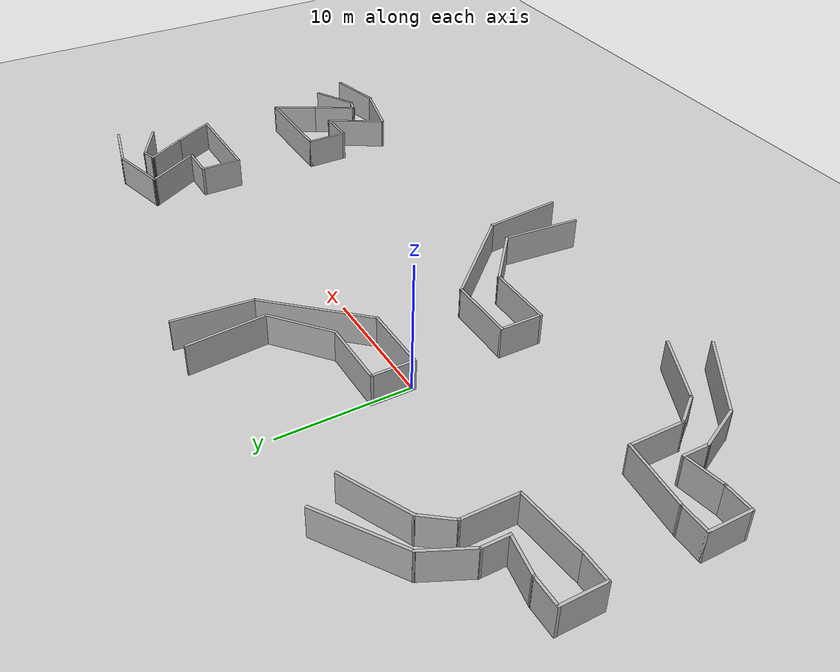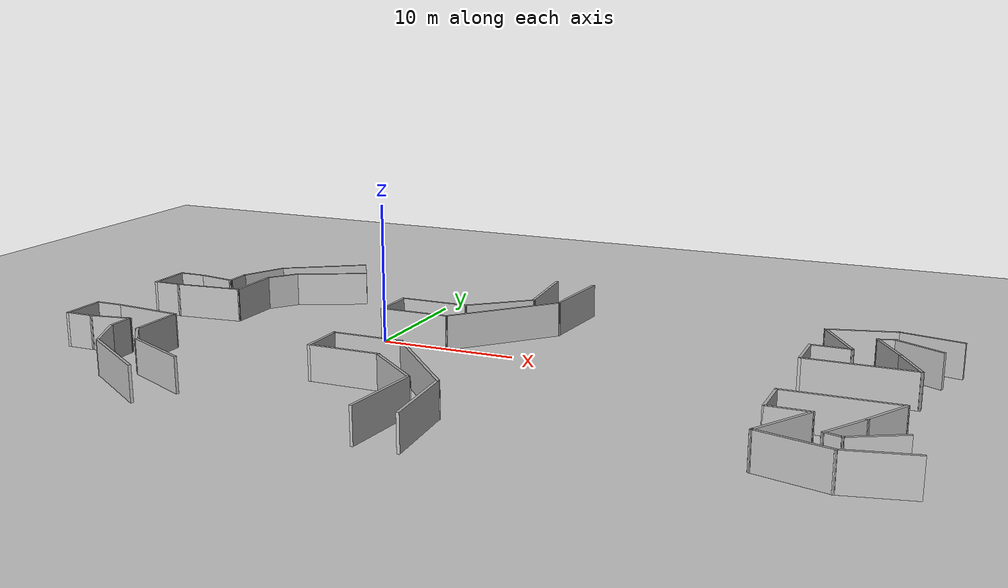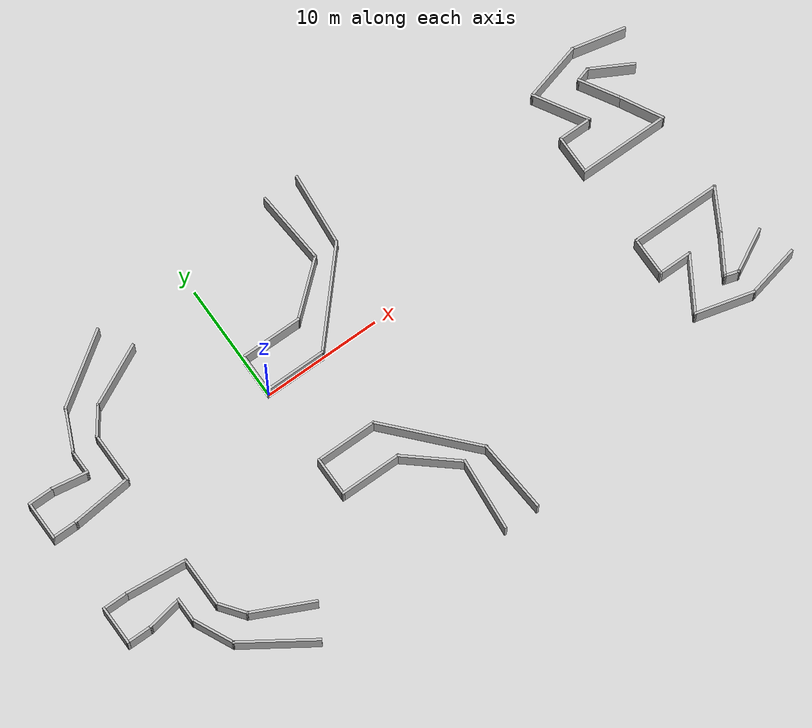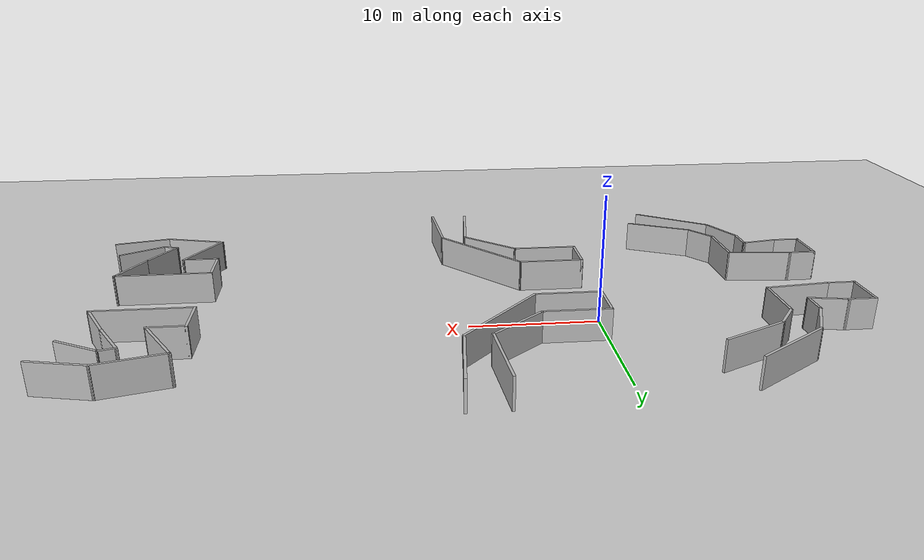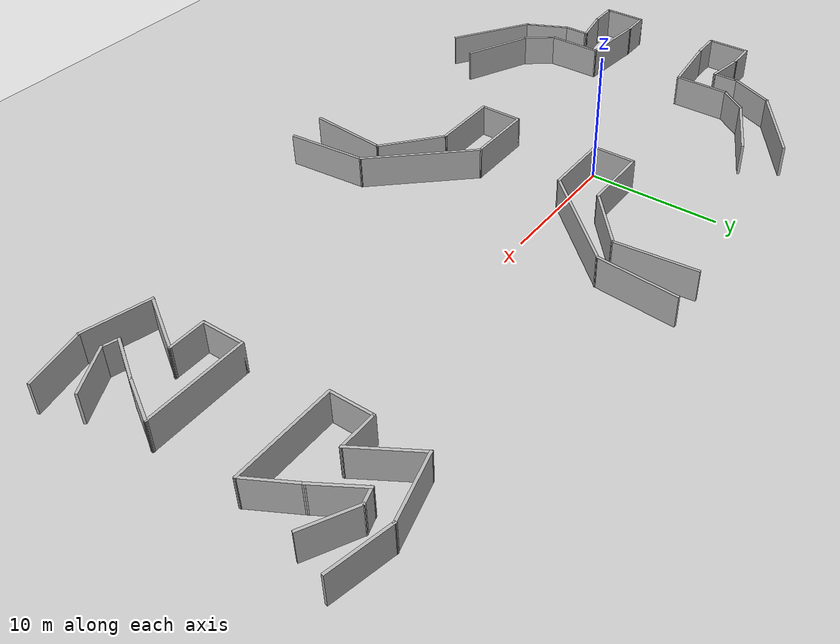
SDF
<?xml version='1.0'?>
<sdf version='1.4'>
  <world name="feedback_experiment2_worlds">
    <scene>
      <sky/>
    </scene>
    <include>
      <uri>model://ground_plane</uri>
    </include>
    <include>
      <uri>model://sun</uri>
    </include>
    <model name='World_0'>
            <link name='Wall_1'>
        <collision name='Wall_1_Collision'>
          <geometry>
            <box>
              <size>6.2208 0.2 2.5</size>
            </box>
          </geometry>
          <pose>0 0 1.25 0 -0 0</pose>
        </collision>
        <visual name='Wall_1_Visual'>
          <pose>0 0 1.25 0 -0 0</pose>
          <geometry>
            <box>
              <size>6.2208 0.2 2.5</size>
            </box>
          </geometry>
          <material>
            <script>
              <uri>file://media/materials/scripts/kitchen.material</uri>
              <name>Kitchen/Wall</name>
            </script>
          </material>
        </visual>
        <velocity_decay>
          <linear>0</linear>
          <angular>0</angular>
        </velocity_decay>
        <pose>8.7 9.45 0 0 0 -1.48765</pose>
      </link>
      <link name='Wall_2'>
        <collision name='Wall_2_Collision'>
          <geometry>
            <box>
              <size>5.37929 0.2 2.5</size>
            </box>
          </geometry>
          <pose>0 0 1.25 0 -0 0</pose>
        </collision>
        <visual name='Wall_2_Visual'>
          <pose>0 0 1.25 0 -0 0</pose>
          <geometry>
            <box>
              <size>5.37929 0.2 2.5</size>
            </box>
          </geometry>
          <material>
            <script>
              <uri>file://media/materials/scripts/kitchen.material</uri>
              <name>Kitchen/Wall</name>
            </script>
          </material>
        </visual>
        <velocity_decay>
          <linear>0</linear>
          <angular>0</angular>
        </velocity_decay>
        <pose>6.975 4.775 0 0 0 -2.4382</pose>
      </link>
      <link name='Wall_3'>
        <collision name='Wall_3_Collision'>
          <geometry>
            <box>
              <size>5.3 0.2 2.5</size>
            </box>
          </geometry>
          <pose>0 0 1.25 0 -0 0</pose>
        </collision>
        <visual name='Wall_3_Visual'>
          <pose>0 0 1.25 0 -0 0</pose>
          <geometry>
            <box>
              <size>5.3 0.2 2.5</size>
            </box>
          </geometry>
          <material>
            <script>
              <uri>file://media/materials/scripts/kitchen.material</uri>
              <name>Kitchen/Wall</name>
            </script>
          </material>
        </visual>
        <velocity_decay>
          <linear>0</linear>
          <angular>0</angular>
        </velocity_decay>
        <pose>2.45 3.1 0 0 -0 3.14159</pose>
      </link>
      <link name='Wall_4'>
        <collision name='Wall_4_Collision'>
          <geometry>
            <box>
              <size>3.4 0.2 2.5</size>
            </box>
          </geometry>
          <pose>0 0 1.25 0 -0 0</pose>
        </collision>
        <visual name='Wall_4_Visual'>
          <pose>0 0 1.25 0 -0 0</pose>
          <geometry>
            <box>
              <size>3.4 0.2 2.5</size>
            </box>
          </geometry>
          <material>
            <script>
              <uri>file://media/materials/scripts/kitchen.material</uri>
              <name>Kitchen/Wall</name>
            </script>
          </material>
        </visual>
        <velocity_decay>
          <linear>0</linear>
          <angular>0</angular>
        </velocity_decay>
        <pose>-0.1 1.5 0 0 0 -1.5708</pose>
      </link>
      <link name='Wall_5'>
        <collision name='Wall_5_Collision'>
          <geometry>
            <box>
              <size>5.3 0.2 2.5</size>
            </box>
          </geometry>
          <pose>0 0 1.25 0 -0 0</pose>
        </collision>
        <visual name='Wall_5_Visual'>
          <pose>0 0 1.25 0 -0 0</pose>
          <geometry>
            <box>
              <size>5.3 0.2 2.5</size>
            </box>
          </geometry>
          <material>
            <script>
              <uri>file://media/materials/scripts/kitchen.material</uri>
              <name>Kitchen/Wall</name>
            </script>
          </material>
        </visual>
        <velocity_decay>
          <linear>0</linear>
          <angular>0</angular>
        </velocity_decay>
        <pose>2.45 -0.1 0 0 -0 0</pose>
      </link>
      <link name='Wall_6'>
        <collision name='Wall_6_Collision'>
          <geometry>
            <box>
              <size>9.04901 0.2 2.5</size>
            </box>
          </geometry>
          <pose>0 0 1.25 0 -0 0</pose>
        </collision>
        <visual name='Wall_6_Visual'>
          <pose>0 0 1.25 0 -0 0</pose>
          <geometry>
            <box>
              <size>9.04901 0.2 2.5</size>
            </box>
          </geometry>
          <material>
            <script>
              <uri>file://media/materials/scripts/kitchen.material</uri>
              <name>Kitchen/Wall</name>
            </script>
          </material>
        </visual>
        <velocity_decay>
          <linear>0</linear>
          <angular>0</angular>
        </velocity_decay>
        <pose>7.975 3.175 0 0 -0 0.833361</pose>
      </link>
      <link name='Wall_7'>
        <collision name='Wall_7_Collision'>
          <geometry>
            <box>
              <size>6.2208 0.2 2.5</size>
            </box>
          </geometry>
          <pose>0 0 1.25 0 -0 0</pose>
        </collision>
        <visual name='Wall_7_Visual'>
          <pose>0 0 1.25 0 -0 0</pose>
          <geometry>
            <box>
              <size>6.2208 0.2 2.5</size>
            </box>
          </geometry>
          <material>
            <script>
              <uri>file://media/materials/scripts/kitchen.material</uri>
              <name>Kitchen/Wall</name>
            </script>
          </material>
        </visual>
        <velocity_decay>
          <linear>0</linear>
          <angular>0</angular>
        </velocity_decay>
        <pose>11.2 9.45 0 0 -0 1.48765</pose>
      </link>
      <static>1</static>
    </model>
    <model name='World_1'>
      <link name='Wall_1'>
        <collision name='Wall_1_Collision'>
          <geometry>
            <box>
              <size>6.2208 0.2 2.5</size>
            </box>
          </geometry>
          <pose>0 0 1.25 0 -0 0</pose>
        </collision>
        <visual name='Wall_1_Visual'>
          <pose>0 0 1.25 0 -0 0</pose>
          <geometry>
            <box>
              <size>6.2208 0.2 2.5</size>
            </box>
          </geometry>
          <material>
            <script>
              <uri>file://media/materials/scripts/kitchen.material</uri>
              <name>Kitchen/Wall</name>
            </script>
          </material>
        </visual>
        <velocity_decay>
          <linear>0</linear>
          <angular>0</angular>
        </velocity_decay>
        <pose>8.7 -16.45 0 0 -0 1.48765</pose>
      </link>
      <link name='Wall_2'>
        <collision name='Wall_2_Collision'>
          <geometry>
            <box>
              <size>5.37929 0.2 2.5</size>
            </box>
          </geometry>
          <pose>0 0 1.25 0 -0 0</pose>
        </collision>
        <visual name='Wall_2_Visual'>
          <pose>0 0 1.25 0 -0 0</pose>
          <geometry>
            <box>
              <size>5.37929 0.2 2.5</size>
            </box>
          </geometry>
          <material>
            <script>
              <uri>file://media/materials/scripts/kitchen.material</uri>
              <name>Kitchen/Wall</name>
            </script>
          </material>
        </visual>
        <velocity_decay>
          <linear>0</linear>
          <angular>0</angular>
        </velocity_decay>
        <pose>6.975 -11.775 0 0 -0 2.4382</pose>
      </link>
      <link name='Wall_3'>
        <collision name='Wall_3_Collision'>
          <geometry>
            <box>
              <size>5.3 0.2 2.5</size>
            </box>
          </geometry>
          <pose>0 0 1.25 0 -0 0</pose>
        </collision>
        <visual name='Wall_3_Visual'>
          <pose>0 0 1.25 0 -0 0</pose>
          <geometry>
            <box>
              <size>5.3 0.2 2.5</size>
            </box>
          </geometry>
          <material>
            <script>
              <uri>file://media/materials/scripts/kitchen.material</uri>
              <name>Kitchen/Wall</name>
            </script>
          </material>
        </visual>
        <velocity_decay>
          <linear>0</linear>
          <angular>0</angular>
        </velocity_decay>
        <pose>2.45 -10.1 0 0 -0 3.14159</pose>
      </link>
      <link name='Wall_4'>
        <collision name='Wall_4_Collision'>
          <geometry>
            <box>
              <size>3.4 0.2 2.5</size>
            </box>
          </geometry>
          <pose>0 0 1.25 0 -0 0</pose>
        </collision>
        <visual name='Wall_4_Visual'>
          <pose>0 0 1.25 0 -0 0</pose>
          <geometry>
            <box>
              <size>3.4 0.2 2.5</size>
            </box>
          </geometry>
          <material>
            <script>
              <uri>file://media/materials/scripts/kitchen.material</uri>
              <name>Kitchen/Wall</name>
            </script>
          </material>
        </visual>
        <velocity_decay>
          <linear>0</linear>
          <angular>0</angular>
        </velocity_decay>
        <pose>-0.1 -8.5 0 0 -0 1.5708</pose>
      </link>
      <link name='Wall_5'>
        <collision name='Wall_5_Collision'>
          <geometry>
            <box>
              <size>5.3 0.2 2.5</size>
            </box>
          </geometry>
          <pose>0 0 1.25 0 -0 0</pose>
        </collision>
        <visual name='Wall_5_Visual'>
          <pose>0 0 1.25 0 -0 0</pose>
          <geometry>
            <box>
              <size>5.3 0.2 2.5</size>
            </box>
          </geometry>
          <material>
            <script>
              <uri>file://media/materials/scripts/kitchen.material</uri>
              <name>Kitchen/Wall</name>
            </script>
          </material>
        </visual>
        <velocity_decay>
          <linear>0</linear>
          <angular>0</angular>
        </velocity_decay>
        <pose>2.45 -6.9 0 0 -0 0</pose>
      </link>
      <link name='Wall_6'>
        <collision name='Wall_6_Collision'>
          <geometry>
            <box>
              <size>9.04901 0.2 2.5</size>
            </box>
          </geometry>
          <pose>0 0 1.25 0 -0 0</pose>
        </collision>
        <visual name='Wall_6_Visual'>
          <pose>0 0 1.25 0 -0 0</pose>
          <geometry>
            <box>
              <size>9.04901 0.2 2.5</size>
            </box>
          </geometry>
          <material>
            <script>
              <uri>file://media/materials/scripts/kitchen.material</uri>
              <name>Kitchen/Wall</name>
            </script>
          </material>
        </visual>
        <velocity_decay>
          <linear>0</linear>
          <angular>0</angular>
        </velocity_decay>
        <pose>7.975 -10.175 0 0 0 -0.833361</pose>
      </link>
      <link name='Wall_7'>
        <collision name='Wall_7_Collision'>
          <geometry>
            <box>
              <size>6.2208 0.2 2.5</size>
            </box>
          </geometry>
          <pose>0 0 1.25 0 -0 0</pose>
        </collision>
        <visual name='Wall_7_Visual'>
          <pose>0 0 1.25 0 -0 0</pose>
          <geometry>
            <box>
              <size>6.2208 0.2 2.5</size>
            </box>
          </geometry>
          <material>
            <script>
              <uri>file://media/materials/scripts/kitchen.material</uri>
              <name>Kitchen/Wall</name>
            </script>
          </material>
        </visual>
        <velocity_decay>
          <linear>0</linear>
          <angular>0</angular>
        </velocity_decay>
        <pose>11.2 -16.45 0 0 0 -1.48765</pose>
      </link>
      <static>1</static>
    </model>
    <model name='World_2'>
      <link name='Wall_1'>
        <collision name='Wall_1_Collision'>
          <geometry>
            <box>
              <size>6.83838 0.2 2.5</size>
            </box>
          </geometry>
          <pose>0 0 1.25 0 -0 0</pose>
        </collision>
        <visual name='Wall_1_Visual'>
          <pose>0 0 1.25 0 -0 0</pose>
          <geometry>
            <box>
              <size>6.83838 0.2 2.5</size>
            </box>
          </geometry>
          <material>
            <script>
              <uri>file://media/materials/scripts/kitchen.material</uri>
              <name>Kitchen/Wall</name>
            </script>
          </material>
        </visual>
        <velocity_decay>
          <linear>0</linear>
          <angular>0</angular>
        </velocity_decay>
        <pose>-10.8185 9.56 0 0 0 -2.55509</pose>
      </link>
      <link name='Wall_2'>
        <collision name='Wall_2_Collision'>
          <geometry>
            <box>
              <size>3.76216 0.2 2.5</size>
            </box>
          </geometry>
          <pose>0 0 1.25 0 -0 0</pose>
        </collision>
        <visual name='Wall_2_Visual'>
          <pose>0 0 1.25 0 -0 0</pose>
          <geometry>
            <box>
              <size>3.76216 0.2 2.5</size>
            </box>
          </geometry>
          <material>
            <script>
              <uri>file://media/materials/scripts/kitchen.material</uri>
              <name>Kitchen/Wall</name>
            </script>
          </material>
        </visual>
        <velocity_decay>
          <linear>0</linear>
          <angular>0</angular>
        </velocity_decay>
        <pose>-14.3415 6.1115 0 0 0 -2.01071</pose>
      </link>
      <link name='Wall_3'>
        <collision name='Wall_3_Collision'>
          <geometry>
            <box>
              <size>2.1 0.2 2.5</size>
            </box>
          </geometry>
          <pose>0 0 1.25 0 -0 0</pose>
        </collision>
        <visual name='Wall_3_Visual'>
          <pose>0 0 1.25 0 -0 0</pose>
          <geometry>
            <box>
              <size>2.1 0.2 2.5</size>
            </box>
          </geometry>
          <material>
            <script>
              <uri>file://media/materials/scripts/kitchen.material</uri>
              <name>Kitchen/Wall</name>
            </script>
          </material>
        </visual>
        <velocity_decay>
          <linear>0</linear>
          <angular>0</angular>
        </velocity_decay>
        <pose>-15.1 3.55 0 0 0 -1.5708</pose>
      </link>
      <link name='Wall_4'>
        <collision name='Wall_4_Collision'>
          <geometry>
            <box>
              <size>3.14279 0.2 2.5</size>
            </box>
          </geometry>
          <pose>0 0 1.25 0 -0 0</pose>
        </collision>
        <visual name='Wall_4_Visual'>
          <pose>0 0 1.25 0 -0 0</pose>
          <geometry>
            <box>
              <size>3.14279 0.2 2.5</size>
            </box>
          </geometry>
          <material>
            <script>
              <uri>file://media/materials/scripts/kitchen.material</uri>
              <name>Kitchen/Wall</name>
            </script>
          </material>
        </visual>
        <velocity_decay>
          <linear>0</linear>
          <angular>0</angular>
        </velocity_decay>
        <pose>-16.55 2.85 0 0 -0 2.97086</pose>
      </link>
      <link name='Wall_5'>
        <collision name='Wall_5_Collision'>
          <geometry>
            <box>
              <size>2.3 0.2 2.5</size>
            </box>
          </geometry>
          <pose>0 0 1.25 0 -0 0</pose>
        </collision>
        <visual name='Wall_5_Visual'>
          <pose>0 0 1.25 0 -0 0</pose>
          <geometry>
            <box>
              <size>2.3 0.2 2.5</size>
            </box>
          </geometry>
          <material>
            <script>
              <uri>file://media/materials/scripts/kitchen.material</uri>
              <name>Kitchen/Wall</name>
            </script>
          </material>
        </visual>
        <velocity_decay>
          <linear>0</linear>
          <angular>0</angular>
        </velocity_decay>
        <pose>-19.05 3.1 0 0 -0 3.14159</pose>
      </link>
      <link name='Wall_6'>
        <collision name='Wall_6_Collision'>
          <geometry>
            <box>
              <size>3.4 0.2 2.5</size>
            </box>
          </geometry>
          <pose>0 0 1.25 0 -0 0</pose>
        </collision>
        <visual name='Wall_6_Visual'>
          <pose>0 0 1.25 0 -0 0</pose>
          <geometry>
            <box>
              <size>3.4 0.2 2.5</size>
            </box>
          </geometry>
          <material>
            <script>
              <uri>file://media/materials/scripts/kitchen.material</uri>
              <name>Kitchen/Wall</name>
            </script>
          </material>
        </visual>
        <velocity_decay>
          <linear>0</linear>
          <angular>0</angular>
        </velocity_decay>
        <pose>-20.1 1.5 0 0 0 -1.5708</pose>
      </link>
      <link name='Wall_7'>
        <collision name='Wall_7_Collision'>
          <geometry>
            <box>
              <size>2.3 0.2 2.5</size>
            </box>
          </geometry>
          <pose>0 0 1.25 0 -0 0</pose>
        </collision>
        <visual name='Wall_7_Visual'>
          <pose>0 0 1.25 0 -0 0</pose>
          <geometry>
            <box>
              <size>2.3 0.2 2.5</size>
            </box>
          </geometry>
          <material>
            <script>
              <uri>file://media/materials/scripts/kitchen.material</uri>
              <name>Kitchen/Wall</name>
            </script>
          </material>
        </visual>
        <velocity_decay>
          <linear>0</linear>
          <angular>0</angular>
        </velocity_decay>
        <pose>-19.05 -0.1 0 0 -0 0</pose>
      </link>
      <link name='Wall_8'>
        <collision name='Wall_8_Collision'>
          <geometry>
            <box>
              <size>5.32445 0.2 2.5</size>
            </box>
          </geometry>
          <pose>0 0 1.25 0 -0 0</pose>
        </collision>
        <visual name='Wall_8_Visual'>
          <pose>0 0 1.25 0 -0 0</pose>
          <geometry>
            <box>
              <size>5.32445 0.2 2.5</size>
            </box>
          </geometry>
          <material>
            <script>
              <uri>file://media/materials/scripts/kitchen.material</uri>
              <name>Kitchen/Wall</name>
            </script>
          </material>
        </visual>
        <velocity_decay>
          <linear>0</linear>
          <angular>0</angular>
        </velocity_decay>
        <pose>-15.45 0.15 0 0 -0 0.097727</pose>
      </link>
      <link name='Wall_9'>
        <collision name='Wall_9_Collision'>
          <geometry>
            <box>
              <size>4.3 0.2 2.5</size>
            </box>
          </geometry>
          <pose>0 0 1.25 0 -0 0</pose>
        </collision>
        <visual name='Wall_9_Visual'>
          <pose>0 0 1.25 0 -0 0</pose>
          <geometry>
            <box>
              <size>4.3 0.2 2.5</size>
            </box>
          </geometry>
          <material>
            <script>
              <uri>file://media/materials/scripts/kitchen.material</uri>
              <name>Kitchen/Wall</name>
            </script>
          </material>
        </visual>
        <velocity_decay>
          <linear>0</linear>
          <angular>0</angular>
        </velocity_decay>
        <pose>-12.9 2.45 0 0 -0 1.5708</pose>
      </link>
      <link name='Wall_10'>
        <collision name='Wall_10_Collision'>
          <geometry>
            <box>
              <size>2.6682 0.2 2.5</size>
            </box>
          </geometry>
          <pose>0 0 1.25 0 -0 0</pose>
        </collision>
        <visual name='Wall_10_Visual'>
          <pose>0 0 1.25 0 -0 0</pose>
          <geometry>
            <box>
              <size>2.6682 0.2 2.5</size>
            </box>
          </geometry>
          <material>
            <script>
              <uri>file://media/materials/scripts/kitchen.material</uri>
              <name>Kitchen/Wall</name>
            </script>
          </material>
        </visual>
        <velocity_decay>
          <linear>0</linear>
          <angular>0</angular>
        </velocity_decay>
        <pose>-12.1585 5.4865 0 0 -0 0.926242</pose>
      </link>
      <link name='Wall_11'>
        <collision name='Wall_11_Collision'>
          <geometry>
            <box>
              <size>5.59064 0.2 2.5</size>
            </box>
          </geometry>
          <pose>0 0 1.25 0 -0 0</pose>
        </collision>
        <visual name='Wall_11_Visual'>
          <pose>0 0 1.25 0 -0 0</pose>
          <geometry>
            <box>
              <size>5.59064 0.2 2.5</size>
            </box>
          </geometry>
          <material>
            <script>
              <uri>file://media/materials/scripts/kitchen.material</uri>
              <name>Kitchen/Wall</name>
            </script>
          </material>
        </visual>
        <velocity_decay>
          <linear>0</linear>
          <angular>0</angular>
        </velocity_decay>
        <pose>-8.9855 7.636 0 0 -0 0.446142</pose>
      </link>
      <static>1</static>
    </model>
    <model name='World_3'>
      <link name='Wall_1'>
        <collision name='Wall_1_Collision'>
          <geometry>
            <box>
              <size>6.83838 0.2 2.5</size>
            </box>
          </geometry>
          <pose>0 0 1.25 0 -0 0</pose>
        </collision>
        <visual name='Wall_1_Visual'>
          <pose>0 0 1.25 0 -0 0</pose>
          <geometry>
            <box>
              <size>6.83838 0.2 2.5</size>
            </box>
          </geometry>
          <material>
            <script>
              <uri>file://media/materials/scripts/kitchen.material</uri>
              <name>Kitchen/Wall</name>
            </script>
          </material>
        </visual>
        <velocity_decay>
          <linear>0</linear>
          <angular>0</angular>
        </velocity_decay>
        <pose>-10.8185 -16.56 0 0 -0 2.55509</pose>
      </link>
      <link name='Wall_2'>
        <collision name='Wall_2_Collision'>
          <geometry>
            <box>
              <size>3.76216 0.2 2.5</size>
            </box>
          </geometry>
          <pose>0 0 1.25 0 -0 0</pose>
        </collision>
        <visual name='Wall_2_Visual'>
          <pose>0 0 1.25 0 -0 0</pose>
          <geometry>
            <box>
              <size>3.76216 0.2 2.5</size>
            </box>
          </geometry>
          <material>
            <script>
              <uri>file://media/materials/scripts/kitchen.material</uri>
              <name>Kitchen/Wall</name>
            </script>
          </material>
        </visual>
        <velocity_decay>
          <linear>0</linear>
          <angular>0</angular>
        </velocity_decay>
        <pose>-14.3415 -13.1115 0 0 -0 2.01071</pose>
      </link>
      <link name='Wall_3'>
        <collision name='Wall_3_Collision'>
          <geometry>
            <box>
              <size>2.1 0.2 2.5</size>
            </box>
          </geometry>
          <pose>0 0 1.25 0 -0 0</pose>
        </collision>
        <visual name='Wall_3_Visual'>
          <pose>0 0 1.25 0 -0 0</pose>
          <geometry>
            <box>
              <size>2.1 0.2 2.5</size>
            </box>
          </geometry>
          <material>
            <script>
              <uri>file://media/materials/scripts/kitchen.material</uri>
              <name>Kitchen/Wall</name>
            </script>
          </material>
        </visual>
        <velocity_decay>
          <linear>0</linear>
          <angular>0</angular>
        </velocity_decay>
        <pose>-15.1 -10.55 0 0 -0 1.5708</pose>
      </link>
      <link name='Wall_4'>
        <collision name='Wall_4_Collision'>
          <geometry>
            <box>
              <size>3.14279 0.2 2.5</size>
            </box>
          </geometry>
          <pose>0 0 1.25 0 -0 0</pose>
        </collision>
        <visual name='Wall_4_Visual'>
          <pose>0 0 1.25 0 -0 0</pose>
          <geometry>
            <box>
              <size>3.14279 0.2 2.5</size>
            </box>
          </geometry>
          <material>
            <script>
              <uri>file://media/materials/scripts/kitchen.material</uri>
              <name>Kitchen/Wall</name>
            </script>
          </material>
        </visual>
        <velocity_decay>
          <linear>0</linear>
          <angular>0</angular>
        </velocity_decay>
        <pose>-16.55 -9.85 0 0 0 -2.97086</pose>
      </link>
      <link name='Wall_5'>
        <collision name='Wall_5_Collision'>
          <geometry>
            <box>
              <size>2.3 0.2 2.5</size>
            </box>
          </geometry>
          <pose>0 0 1.25 0 -0 0</pose>
        </collision>
        <visual name='Wall_5_Visual'>
          <pose>0 0 1.25 0 -0 0</pose>
          <geometry>
            <box>
              <size>2.3 0.2 2.5</size>
            </box>
          </geometry>
          <material>
            <script>
              <uri>file://media/materials/scripts/kitchen.material</uri>
              <name>Kitchen/Wall</name>
            </script>
          </material>
        </visual>
        <velocity_decay>
          <linear>0</linear>
          <angular>0</angular>
        </velocity_decay>
        <pose>-19.05 -10.1 0 0 -0 3.14159</pose>
      </link>
      <link name='Wall_6'>
        <collision name='Wall_6_Collision'>
          <geometry>
            <box>
              <size>3.4 0.2 2.5</size>
            </box>
          </geometry>
          <pose>0 0 1.25 0 -0 0</pose>
        </collision>
        <visual name='Wall_6_Visual'>
          <pose>0 0 1.25 0 -0 0</pose>
          <geometry>
            <box>
              <size>3.4 0.2 2.5</size>
            </box>
          </geometry>
          <material>
            <script>
              <uri>file://media/materials/scripts/kitchen.material</uri>
              <name>Kitchen/Wall</name>
            </script>
          </material>
        </visual>
        <velocity_decay>
          <linear>0</linear>
          <angular>0</angular>
        </velocity_decay>
        <pose>-20.1 -8.5 0 0 -0 1.5708</pose>
      </link>
      <link name='Wall_7'>
        <collision name='Wall_7_Collision'>
          <geometry>
            <box>
              <size>2.3 0.2 2.5</size>
            </box>
          </geometry>
          <pose>0 0 1.25 0 -0 0</pose>
        </collision>
        <visual name='Wall_7_Visual'>
          <pose>0 0 1.25 0 -0 0</pose>
          <geometry>
            <box>
              <size>2.3 0.2 2.5</size>
            </box>
          </geometry>
          <material>
            <script>
              <uri>file://media/materials/scripts/kitchen.material</uri>
              <name>Kitchen/Wall</name>
            </script>
          </material>
        </visual>
        <velocity_decay>
          <linear>0</linear>
          <angular>0</angular>
        </velocity_decay>
        <pose>-19.05 -6.9 0 0 -0 0</pose>
      </link>
      <link name='Wall_8'>
        <collision name='Wall_8_Collision'>
          <geometry>
            <box>
              <size>5.32445 0.2 2.5</size>
            </box>
          </geometry>
          <pose>0 0 1.25 0 -0 0</pose>
        </collision>
        <visual name='Wall_8_Visual'>
          <pose>0 0 1.25 0 -0 0</pose>
          <geometry>
            <box>
              <size>5.32445 0.2 2.5</size>
            </box>
          </geometry>
          <material>
            <script>
              <uri>file://media/materials/scripts/kitchen.material</uri>
              <name>Kitchen/Wall</name>
            </script>
          </material>
        </visual>
        <velocity_decay>
          <linear>0</linear>
          <angular>0</angular>
        </velocity_decay>
        <pose>-15.45 -7.15 0 0 0 -0.097727</pose>
      </link>
      <link name='Wall_9'>
        <collision name='Wall_9_Collision'>
          <geometry>
            <box>
              <size>4.3 0.2 2.5</size>
            </box>
          </geometry>
          <pose>0 0 1.25 0 -0 0</pose>
        </collision>
        <visual name='Wall_9_Visual'>
          <pose>0 0 1.25 0 -0 0</pose>
          <geometry>
            <box>
              <size>4.3 0.2 2.5</size>
            </box>
          </geometry>
          <material>
            <script>
              <uri>file://media/materials/scripts/kitchen.material</uri>
              <name>Kitchen/Wall</name>
            </script>
          </material>
        </visual>
        <velocity_decay>
          <linear>0</linear>
          <angular>0</angular>
        </velocity_decay>
        <pose>-12.9 -9.45 0 0 0 -1.5708</pose>
      </link>
      <link name='Wall_10'>
        <collision name='Wall_10_Collision'>
          <geometry>
            <box>
              <size>2.6682 0.2 2.5</size>
            </box>
          </geometry>
          <pose>0 0 1.25 0 -0 0</pose>
        </collision>
        <visual name='Wall_10_Visual'>
          <pose>0 0 1.25 0 -0 0</pose>
          <geometry>
            <box>
              <size>2.6682 0.2 2.5</size>
            </box>
          </geometry>
          <material>
            <script>
              <uri>file://media/materials/scripts/kitchen.material</uri>
              <name>Kitchen/Wall</name>
            </script>
          </material>
        </visual>
        <velocity_decay>
          <linear>0</linear>
          <angular>0</angular>
        </velocity_decay>
        <pose>-12.1585 -12.4865 0 0 0 -0.926242</pose>
      </link>
      <link name='Wall_11'>
        <collision name='Wall_11_Collision'>
          <geometry>
            <box>
              <size>5.59064 0.2 2.5</size>
            </box>
          </geometry>
          <pose>0 0 1.25 0 -0 0</pose>
        </collision>
        <visual name='Wall_11_Visual'>
          <pose>0 0 1.25 0 -0 0</pose>
          <geometry>
            <box>
              <size>5.59064 0.2 2.5</size>
            </box>
          </geometry>
          <material>
            <script>
              <uri>file://media/materials/scripts/kitchen.material</uri>
              <name>Kitchen/Wall</name>
            </script>
          </material>
        </visual>
        <velocity_decay>
          <linear>0</linear>
          <angular>0</angular>
        </velocity_decay>
        <pose>-8.9855 -14.636 0 0 0 -0.446142</pose>
      </link>
      <static>1</static>
    </model>
    <model name='World_4'>
      <link name='Wall_1'>
        <collision name='Wall_1_Collision'>
          <geometry>
            <box>
              <size>4.57832 0.2 2.5</size>
            </box>
          </geometry>
          <pose>0 0 1.25 0 -0 0</pose>
        </collision>
        <visual name='Wall_1_Visual'>
          <pose>0 0 1.25 0 -0 0</pose>
          <geometry>
            <box>
              <size>4.57832 0.2 2.5</size>
            </box>
          </geometry>
          <material>
            <script>
              <uri>file://media/materials/scripts/kitchen.material</uri>
              <name>Kitchen/Wall</name>
            </script>
          </material>
        </visual>
        <velocity_decay>
          <linear>0</linear>
          <angular>0</angular>
        </velocity_decay>
        <pose>37.034 7.9935 0 0 -0 2.92077</pose>
      </link>
      <link name='Wall_2'>
        <collision name='Wall_2_Collision'>
          <geometry>
            <box>
              <size>5.07229 0.2 2.5</size>
            </box>
          </geometry>
          <pose>0 0 1.25 0 -0 0</pose>
        </collision>
        <visual name='Wall_2_Visual'>
          <pose>0 0 1.25 0 -0 0</pose>
          <geometry>
            <box>
              <size>5.07229 0.2 2.5</size>
            </box>
          </geometry>
          <material>
            <script>
              <uri>file://media/materials/scripts/kitchen.material</uri>
              <name>Kitchen/Wall</name>
            </script>
          </material>
        </visual>
        <velocity_decay>
          <linear>0</linear>
          <angular>0</angular>
        </velocity_decay>
        <pose>32.5405 7.859 0 0 0 -2.88681</pose>
      </link>
      <link name='Wall_3'>
        <collision name='Wall_3_Collision'>
          <geometry>
            <box>
              <size>5.01544 0.2 2.5</size>
            </box>
          </geometry>
          <pose>0 0 1.25 0 -0 0</pose>
        </collision>
        <visual name='Wall_3_Visual'>
          <pose>0 0 1.25 0 -0 0</pose>
          <geometry>
            <box>
              <size>5.01544 0.2 2.5</size>
            </box>
          </geometry>
          <material>
            <script>
              <uri>file://media/materials/scripts/kitchen.material</uri>
              <name>Kitchen/Wall</name>
            </script>
          </material>
        </visual>
        <velocity_decay>
          <linear>0</linear>
          <angular>0</angular>
        </velocity_decay>
        <pose>31.4085 5.1725 0 0 0 -1.03679</pose>
      </link>
      <link name='Wall_4'>
        <collision name='Wall_4_Collision'>
          <geometry>
            <box>
              <size>2.934 0.2 2.5</size>
            </box>
          </geometry>
          <pose>0 0 1.25 0 -0 0</pose>
        </collision>
        <visual name='Wall_4_Visual'>
          <pose>0 0 1.25 0 -0 0</pose>
          <geometry>
            <box>
              <size>2.934 0.2 2.5</size>
            </box>
          </geometry>
          <material>
            <script>
              <uri>file://media/materials/scripts/kitchen.material</uri>
              <name>Kitchen/Wall</name>
            </script>
          </material>
        </visual>
        <velocity_decay>
          <linear>0</linear>
          <angular>0</angular>
        </velocity_decay>
        <pose>31.267 3.1 0 0 -0 3.14159</pose>
      </link>
      <link name='Wall_5'>
        <collision name='Wall_5_Collision'>
          <geometry>
            <box>
              <size>3.4 0.2 2.5</size>
            </box>
          </geometry>
          <pose>0 0 1.25 0 -0 0</pose>
        </collision>
        <visual name='Wall_5_Visual'>
          <pose>0 0 1.25 0 -0 0</pose>
          <geometry>
            <box>
              <size>3.4 0.2 2.5</size>
            </box>
          </geometry>
          <material>
            <script>
              <uri>file://media/materials/scripts/kitchen.material</uri>
              <name>Kitchen/Wall</name>
            </script>
          </material>
        </visual>
        <velocity_decay>
          <linear>0</linear>
          <angular>0</angular>
        </velocity_decay>
        <pose>29.9 1.5 0 0 0 -1.5708</pose>
      </link>
      <link name='Wall_6'>
        <collision name='Wall_6_Collision'>
          <geometry>
            <box>
              <size>7.666 0.2 2.5</size>
            </box>
          </geometry>
          <pose>0 0 1.25 0 -0 0</pose>
        </collision>
        <visual name='Wall_6_Visual'>
          <pose>0 0 1.25 0 -0 0</pose>
          <geometry>
            <box>
              <size>7.666 0.2 2.5</size>
            </box>
          </geometry>
          <material>
            <script>
              <uri>file://media/materials/scripts/kitchen.material</uri>
              <name>Kitchen/Wall</name>
            </script>
          </material>
        </visual>
        <velocity_decay>
          <linear>0</linear>
          <angular>0</angular>
        </velocity_decay>
        <pose>33.633 -0.1 0 0 -0 0</pose>
      </link>
      <link name='Wall_7'>
        <collision name='Wall_7_Collision'>
          <geometry>
            <box>
              <size>3.83866 0.2 2.5</size>
            </box>
          </geometry>
          <pose>0 0 1.25 0 -0 0</pose>
        </collision>
        <visual name='Wall_7_Visual'>
          <pose>0 0 1.25 0 -0 0</pose>
          <geometry>
            <box>
              <size>3.83866 0.2 2.5</size>
            </box>
          </geometry>
          <material>
            <script>
              <uri>file://media/materials/scripts/kitchen.material</uri>
              <name>Kitchen/Wall</name>
            </script>
          </material>
        </visual>
        <velocity_decay>
          <linear>0</linear>
          <angular>0</angular>
        </velocity_decay>
        <pose>36.5 1.5 0 0 -0 2.0669</pose>
      </link>
      <link name='Wall_8'>
        <collision name='Wall_8_Collision'>
          <geometry>
            <box>
              <size>3.74849 0.2 2.5</size>
            </box>
          </geometry>
          <pose>0 0 1.25 0 -0 0</pose>
        </collision>
        <visual name='Wall_8_Visual'>
          <pose>0 0 1.25 0 -0 0</pose>
          <geometry>
            <box>
              <size>3.74849 0.2 2.5</size>
            </box>
          </geometry>
          <material>
            <script>
              <uri>file://media/materials/scripts/kitchen.material</uri>
              <name>Kitchen/Wall</name>
            </script>
          </material>
        </visual>
        <velocity_decay>
          <linear>0</linear>
          <angular>0</angular>
        </velocity_decay>
        <pose>34.7255 4.624 0 0 -0 2.10836</pose>
      </link>
      <link name='Wall_9'>
        <collision name='Wall_9_Collision'>
          <geometry>
            <box>
              <size>1.3288 0.2 2.5</size>
            </box>
          </geometry>
          <pose>0 0 1.25 0 -0 0</pose>
        </collision>
        <visual name='Wall_9_Visual'>
          <pose>0 0 1.25 0 -0 0</pose>
          <geometry>
            <box>
              <size>1.3288 0.2 2.5</size>
            </box>
          </geometry>
          <material>
            <script>
              <uri>file://media/materials/scripts/kitchen.material</uri>
              <name>Kitchen/Wall</name>
            </script>
          </material>
        </visual>
        <velocity_decay>
          <linear>0</linear>
          <angular>0</angular>
        </velocity_decay>
        <pose>34.3575 6.3105 0 0 -0 0.292051</pose>
      </link>
      <link name='Wall_10'>
        <collision name='Wall_10_Collision'>
          <geometry>
            <box>
              <size>3.90105 0.2 2.5</size>
            </box>
          </geometry>
          <pose>0 0 1.25 0 -0 0</pose>
        </collision>
        <visual name='Wall_10_Visual'>
          <pose>0 0 1.25 0 -0 0</pose>
          <geometry>
            <box>
              <size>3.90105 0.2 2.5</size>
            </box>
          </geometry>
          <material>
            <script>
              <uri>file://media/materials/scripts/kitchen.material</uri>
              <name>Kitchen/Wall</name>
            </script>
          </material>
        </visual>
        <velocity_decay>
          <linear>0</linear>
          <angular>0</angular>
        </velocity_decay>
        <pose>36.521 5.584 0 0 0 -0.501115</pose>
      </link>
      <static>1</static>
    </model>
    <model name='World_5'>
      <link name='Wall_1'>
        <collision name='Wall_1_Collision'>
          <geometry>
            <box>
              <size>4.57832 0.2 2.5</size>
            </box>
          </geometry>
          <pose>0 0 1.25 0 -0 0</pose>
        </collision>
        <visual name='Wall_1_Visual'>
          <pose>0 0 1.25 0 -0 0</pose>
          <geometry>
            <box>
              <size>4.57832 0.2 2.5</size>
            </box>
          </geometry>
          <material>
            <script>
              <uri>file://media/materials/scripts/kitchen.material</uri>
              <name>Kitchen/Wall</name>
            </script>
          </material>
        </visual>
        <velocity_decay>
          <linear>0</linear>
          <angular>0</angular>
        </velocity_decay>
        <pose>37.034 -14.9935 0 0 0 -2.92077</pose>
      </link>
      <link name='Wall_2'>
        <collision name='Wall_2_Collision'>
          <geometry>
            <box>
              <size>5.07229 0.2 2.5</size>
            </box>
          </geometry>
          <pose>0 0 1.25 0 -0 0</pose>
        </collision>
        <visual name='Wall_2_Visual'>
          <pose>0 0 1.25 0 -0 0</pose>
          <geometry>
            <box>
              <size>5.07229 0.2 2.5</size>
            </box>
          </geometry>
          <material>
            <script>
              <uri>file://media/materials/scripts/kitchen.material</uri>
              <name>Kitchen/Wall</name>
            </script>
          </material>
        </visual>
        <velocity_decay>
          <linear>0</linear>
          <angular>0</angular>
        </velocity_decay>
        <pose>32.5405 -14.859 0 0 -0 2.88681</pose>
      </link>
      <link name='Wall_3'>
        <collision name='Wall_3_Collision'>
          <geometry>
            <box>
              <size>5.01544 0.2 2.5</size>
            </box>
          </geometry>
          <pose>0 0 1.25 0 -0 0</pose>
        </collision>
        <visual name='Wall_3_Visual'>
          <pose>0 0 1.25 0 -0 0</pose>
          <geometry>
            <box>
              <size>5.01544 0.2 2.5</size>
            </box>
          </geometry>
          <material>
            <script>
              <uri>file://media/materials/scripts/kitchen.material</uri>
              <name>Kitchen/Wall</name>
            </script>
          </material>
        </visual>
        <velocity_decay>
          <linear>0</linear>
          <angular>0</angular>
        </velocity_decay>
        <pose>31.4085 -12.1725 0 0 -0 1.03679</pose>
      </link>
      <link name='Wall_4'>
        <collision name='Wall_4_Collision'>
          <geometry>
            <box>
              <size>2.934 0.2 2.5</size>
            </box>
          </geometry>
          <pose>0 0 1.25 0 -0 0</pose>
        </collision>
        <visual name='Wall_4_Visual'>
          <pose>0 0 1.25 0 -0 0</pose>
          <geometry>
            <box>
              <size>2.934 0.2 2.5</size>
            </box>
          </geometry>
          <material>
            <script>
              <uri>file://media/materials/scripts/kitchen.material</uri>
              <name>Kitchen/Wall</name>
            </script>
          </material>
        </visual>
        <velocity_decay>
          <linear>0</linear>
          <angular>0</angular>
        </velocity_decay>
        <pose>31.267 -10.1 0 0 -0 3.14159</pose>
      </link>
      <link name='Wall_5'>
        <collision name='Wall_5_Collision'>
          <geometry>
            <box>
              <size>3.4 0.2 2.5</size>
            </box>
          </geometry>
          <pose>0 0 1.25 0 -0 0</pose>
        </collision>
        <visual name='Wall_5_Visual'>
          <pose>0 0 1.25 0 -0 0</pose>
          <geometry>
            <box>
              <size>3.4 0.2 2.5</size>
            </box>
          </geometry>
          <material>
            <script>
              <uri>file://media/materials/scripts/kitchen.material</uri>
              <name>Kitchen/Wall</name>
            </script>
          </material>
        </visual>
        <velocity_decay>
          <linear>0</linear>
          <angular>0</angular>
        </velocity_decay>
        <pose>29.9 -8.5 0 0 -0 1.5708</pose>
      </link>
      <link name='Wall_6'>
        <collision name='Wall_6_Collision'>
          <geometry>
            <box>
              <size>7.666 0.2 2.5</size>
            </box>
          </geometry>
          <pose>0 0 1.25 0 -0 0</pose>
        </collision>
        <visual name='Wall_6_Visual'>
          <pose>0 0 1.25 0 -0 0</pose>
          <geometry>
            <box>
              <size>7.666 0.2 2.5</size>
            </box>
          </geometry>
          <material>
            <script>
              <uri>file://media/materials/scripts/kitchen.material</uri>
              <name>Kitchen/Wall</name>
            </script>
          </material>
        </visual>
        <velocity_decay>
          <linear>0</linear>
          <angular>0</angular>
        </velocity_decay>
        <pose>33.633 -6.9 0 0 -0 0</pose>
      </link>
      <link name='Wall_7'>
        <collision name='Wall_7_Collision'>
          <geometry>
            <box>
              <size>3.83866 0.2 2.5</size>
            </box>
          </geometry>
          <pose>0 0 1.25 0 -0 0</pose>
        </collision>
        <visual name='Wall_7_Visual'>
          <pose>0 0 1.25 0 -0 0</pose>
          <geometry>
            <box>
              <size>3.83866 0.2 2.5</size>
            </box>
          </geometry>
          <material>
            <script>
              <uri>file://media/materials/scripts/kitchen.material</uri>
              <name>Kitchen/Wall</name>
            </script>
          </material>
        </visual>
        <velocity_decay>
          <linear>0</linear>
          <angular>0</angular>
        </velocity_decay>
        <pose>36.5 -8.5 0 0 0 -2.0669</pose>
      </link>
      <link name='Wall_8'>
        <collision name='Wall_8_Collision'>
          <geometry>
            <box>
              <size>3.748 0.2 2.5</size>
            </box>
          </geometry>
          <pose>0 0 1.25 0 -0 0</pose>
        </collision>
        <visual name='Wall_8_Visual'>
          <pose>0 0 1.25 0 -0 0</pose>
          <geometry>
            <box>
              <size>3.748 0.2 2.5</size>
            </box>
          </geometry>
          <material>
            <script>
              <uri>file://media/materials/scripts/kitchen.material</uri>
              <name>Kitchen/Wall</name>
            </script>
          </material>
        </visual>
        <velocity_decay>
          <linear>0</linear>
          <angular>0</angular>
        </velocity_decay>
        <pose>34.7255 -11.624 0 0 0 -2.10836</pose>
      </link>
      <link name='Wall_9'>
        <collision name='Wall_9_Collision'>
          <geometry>
            <box>
              <size>1.3288 0.2 2.5</size>
            </box>
          </geometry>
          <pose>0 0 1.25 0 -0 0</pose>
        </collision>
        <visual name='Wall_9_Visual'>
          <pose>0 0 1.25 0 -0 0</pose>
          <geometry>
            <box>
              <size>1.3288 0.2 2.5</size>
            </box>
          </geometry>
          <material>
            <script>
              <uri>file://media/materials/scripts/kitchen.material</uri>
              <name>Kitchen/Wall</name>
            </script>
          </material>
        </visual>
        <velocity_decay>
          <linear>0</linear>
          <angular>0</angular>
        </velocity_decay>
        <pose>34.3575 -13.3105 0 0 0 -0.292051</pose>
      </link>
      <link name='Wall_10'>
        <collision name='Wall_10_Collision'>
          <geometry>
            <box>
              <size>3.90105 0.2 2.5</size>
            </box>
          </geometry>
          <pose>0 0 1.25 0 -0 0</pose>
        </collision>
        <visual name='Wall_10_Visual'>
          <pose>0 0 1.25 0 -0 0</pose>
          <geometry>
            <box>
              <size>3.90105 0.2 2.5</size>
            </box>
          </geometry>
          <material>
            <script>
              <uri>file://media/materials/scripts/kitchen.material</uri>
              <name>Kitchen/Wall</name>
            </script>
          </material>
        </visual>
        <velocity_decay>
          <linear>0</linear>
          <angular>0</angular>
        </velocity_decay>
        <pose>36.521 -12.584 0 0 -0 0.501115</pose>
      </link>
      <static>1</static>
    </model>
    <gui fullscreen='0'>
      <camera name='user_camera'>
        <pose>10.0 -3.2 60.0 -1.5708 1.5708 0.0</pose>
        <view_controller>orbit</view_controller>
      </camera>
    </gui>
  </world>
</sdf>
